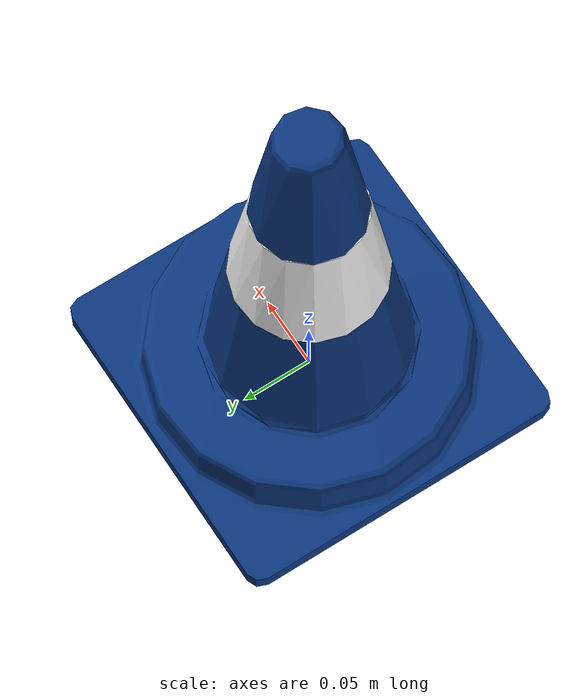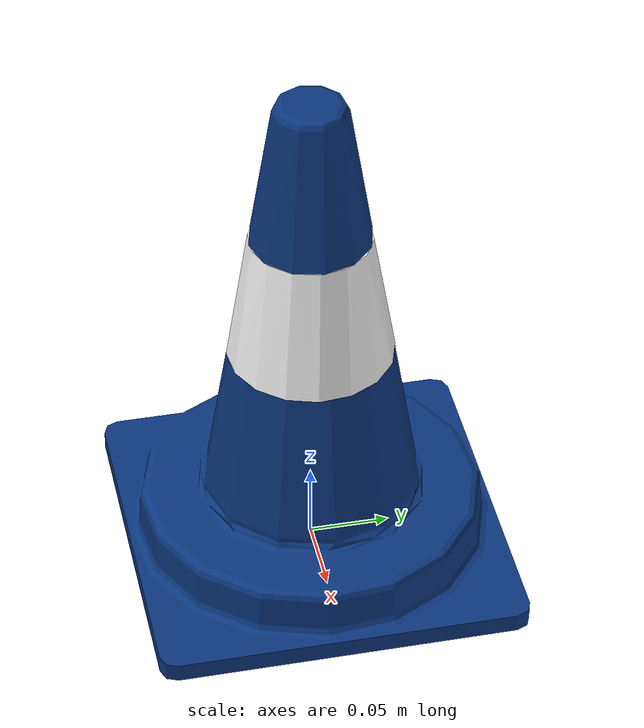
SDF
<?xml version='1.0'?>
<sdf version="1.4">
  <model name="cone_blue">
    <static>true</static>
    <pose>0 0 0 0 0 0</pose>
    <link name="link">
      <inertial>
        <pose>0 0 0.1625 0 0 0</pose>
        <mass>0.45</mass>
        <inertia>
          <ixx>0.007883498</ixx>
          <ixy>0.0</ixy>
          <ixz>0.0</ixz>
          <iyy>0.007883498</iyy>
          <iyz>0.0</iyz>
          <izz>0.000107315</izz>
        </inertia>
      </inertial>
      <collision name="collision">
        <pose>0 0 0.1625 0 0 0</pose>
        <geometry>
          <cylinder>
            <radius>0.05075</radius>
            <length>0.325</length>
          </cylinder>
        </geometry>
      </collision>
      <visual name="visual_btm">
        <geometry>
          <mesh>
            <uri>model://cone_blue/cone_btm.stl</uri>
          </mesh>
        </geometry>
        <material>
          <ambient>0.043 0.2157 0.498 1</ambient>
          <diffuse>0.043 0.2157 0.498 1</diffuse>
          <specular>0.043 0.2157 0.498 1</specular>
          <emissive>0 0 0 0</emissive>
        </material>
      </visual>
      <visual name="visual_mid">
        <geometry>
          <mesh>
            <uri>model://cone_blue/cone_mid.stl</uri>
          </mesh>
        </geometry>
        <material>
          <ambient>1 1 1 1</ambient>
          <diffuse>1 1 1 1</diffuse>
          <specular>1 1 1 1</specular>
          <emissive>0 0 0 0</emissive>
        </material>
      </visual>
      <visual name="visual_top">
        <geometry>
          <mesh>
            <uri>model://cone_blue/cone_top.stl</uri>
          </mesh>
        </geometry>
        <material>
          <ambient>0.043 0.2157 0.498 1</ambient>
          <diffuse>0.043 0.2157 0.498 1</diffuse>
          <specular>0.043 0.2157 0.498 1</specular>
          <emissive>0 0 0 0</emissive>
        </material>
      </visual>
    </link>
  </model>
</sdf>
